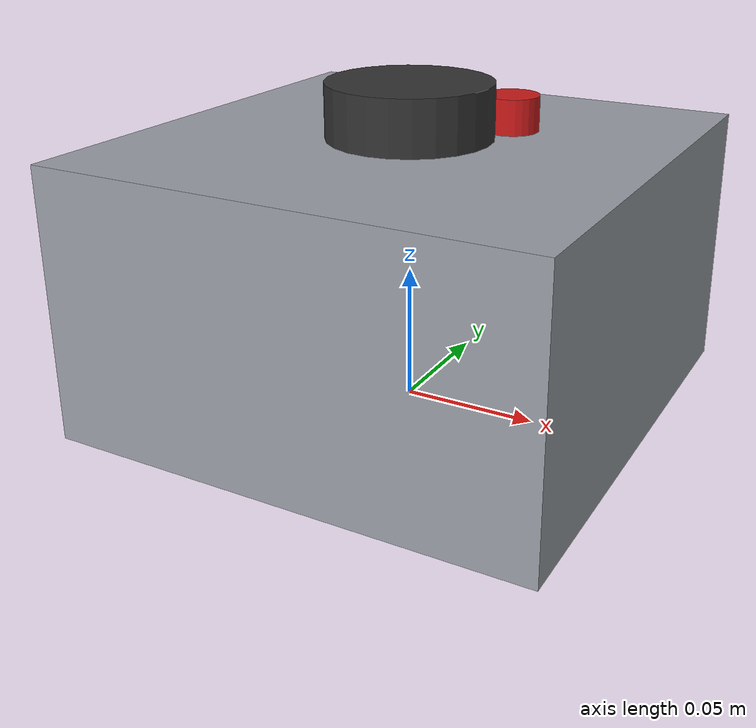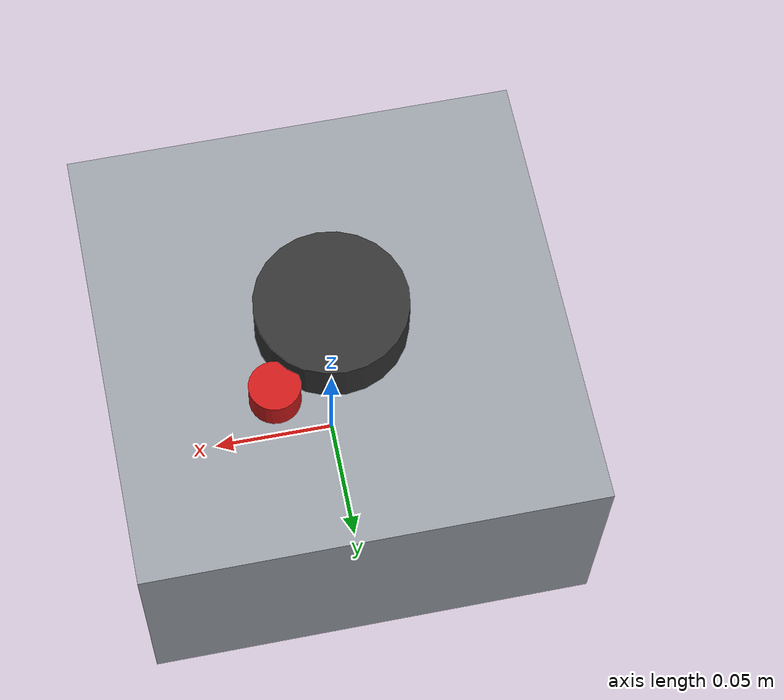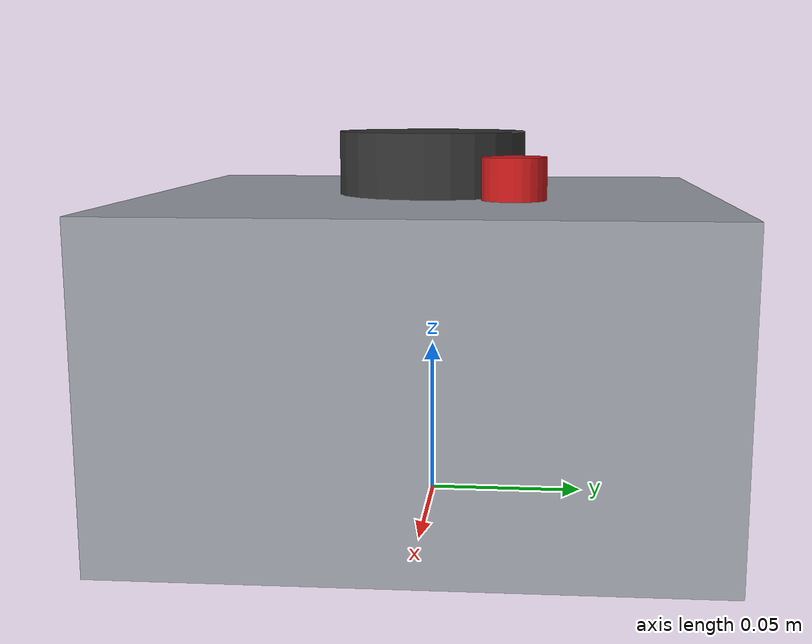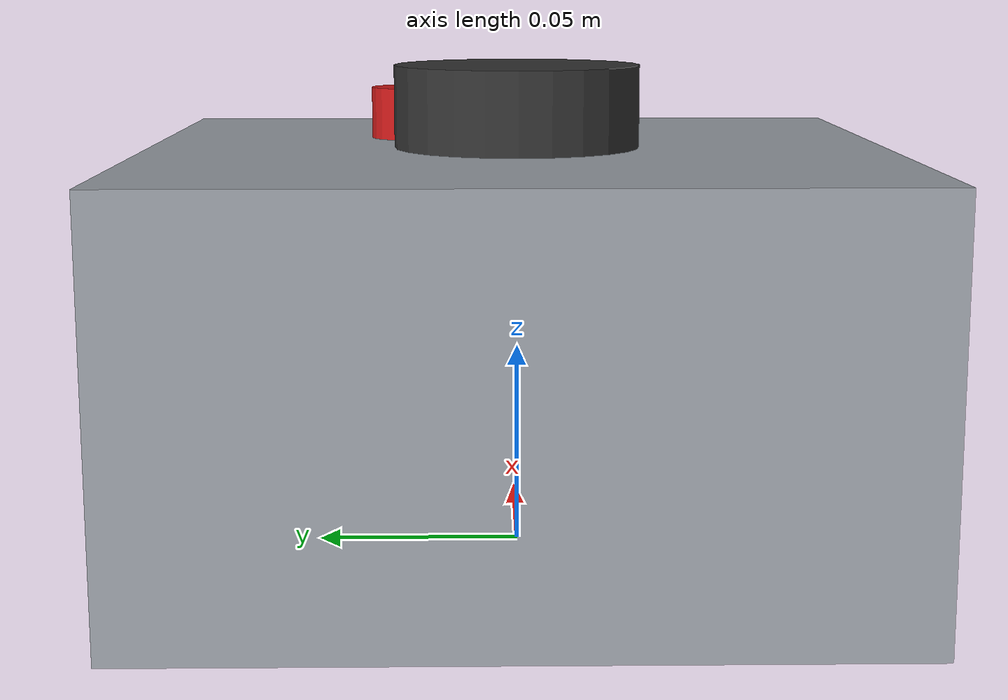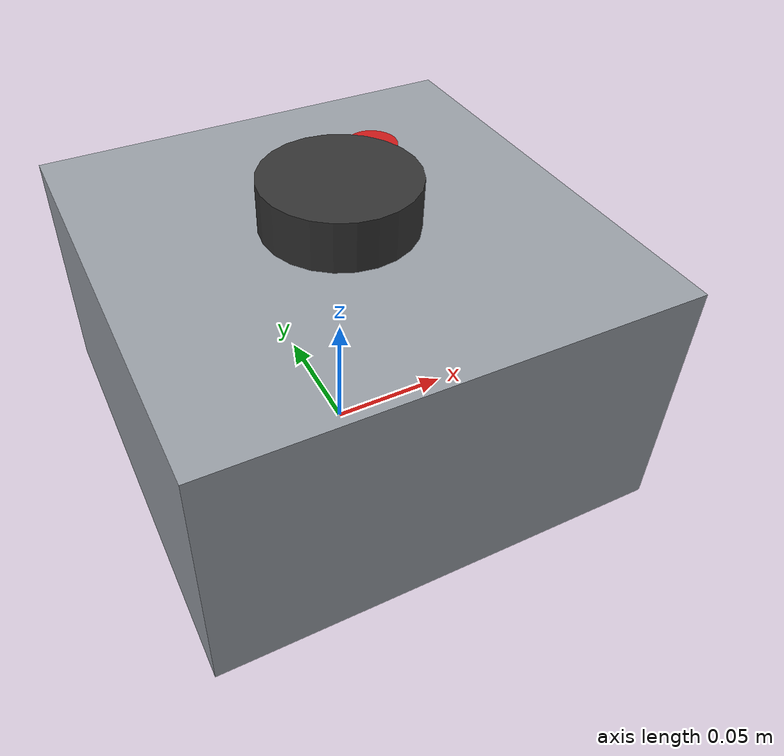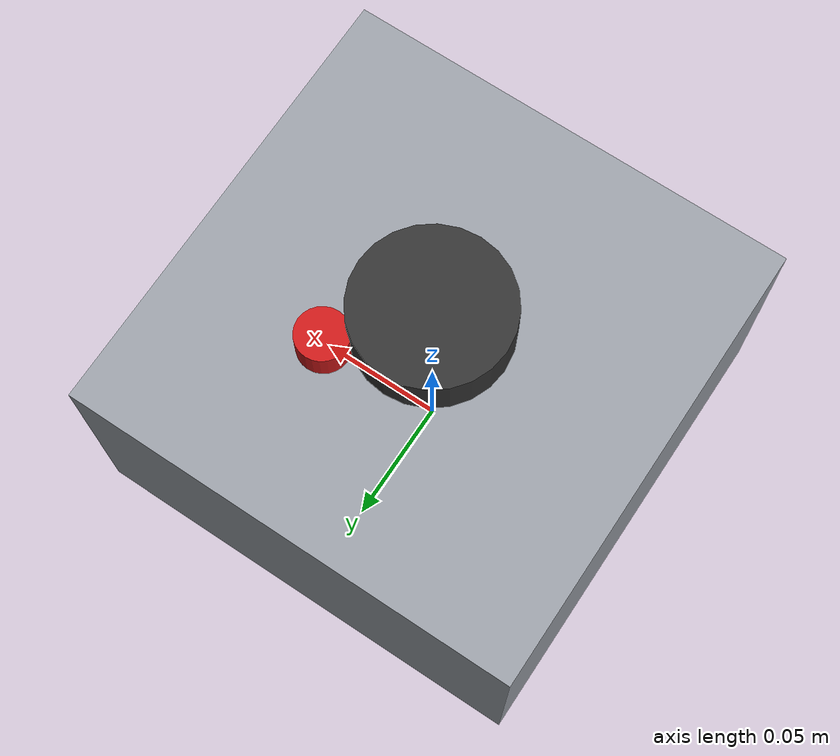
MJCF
<?xml version="1.0" encoding="utf-8"?>
<mujoco model="martindale_abrasion_tester">
  <compiler angle="radian" autolimits="true"/>
  <default>
    <default class="body"><geom contype="1" conaffinity="1"/></default>
  </default>
  <worldbody>
    <body name="base">
      <geom type="box" size="0.09 0.09 0.05" pos="0 0 0.05" rgba="0.6 0.62 0.65 1" class="body"/>
      <geom type="box" size="0.027 0.0045 0.0125" pos="-0.045 -0.081 0.07500000000000001" rgba="0.9 0.7 0.1 1" class="body"/>
      <geom type="cylinder" size="0.01 0.008" pos="0.027 0.027 0.10500000000000001" rgba="0.8 0.1 0.1 1" class="body"/>
      <body name="abrasion_head" pos="0 0 0.11">
        <joint name="abrasion_head_joint" type="hinge" axis="0 0 1" range="-3.14159 3.14159" damping="0.2" frictionloss="0.08"/>
  <geom type="cylinder" size="0.03 0.01" pos="0 0 0" rgba="0.2 0.2 0.2 1" class="body"/>
      </body>
    </body>
  </worldbody>
</mujoco>
